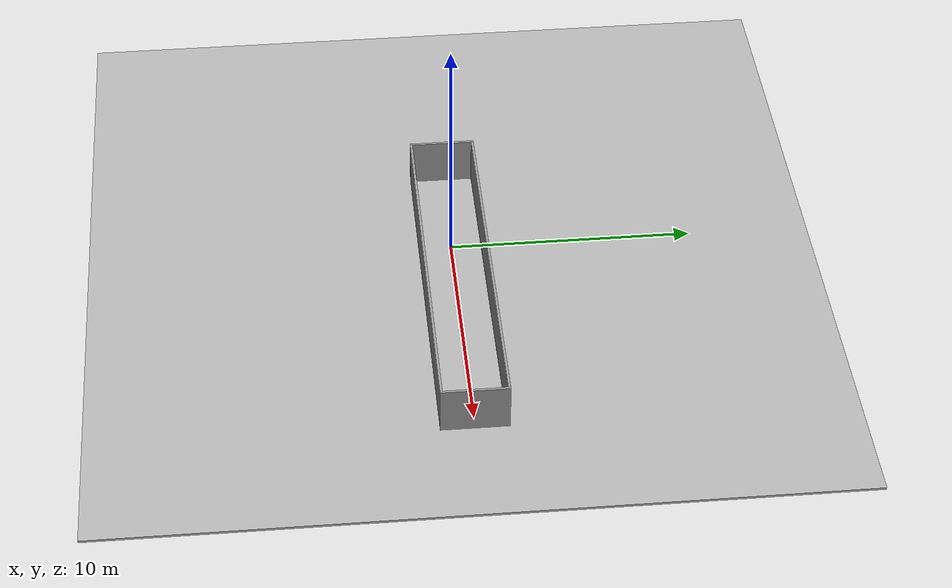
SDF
<sdf version="1.7">
 <world name="corridor_two_human">
  <physics type="ode"><max_step_size>0.003</max_step_size><real_time_factor>1.0</real_time_factor></physics>
  <plugin name="gz::sim::systems::Physics" filename="gz-sim-physics-system"/>
  <plugin name="gz::sim::systems::UserCommands" filename="gz-sim-user-commands-system"/>
  <plugin name="gz::sim::systems::SceneBroadcaster" filename="gz-sim-scene-broadcaster-system"/>
  <plugin name="gz::sim::systems::Contact" filename="gz-sim-contact-system"/>
  <light type="directional" name="sun">
   <cast_shadows>0</cast_shadows>
   <pose>-5 -3 10 0 0 0</pose>
   <diffuse>1 1 1 1</diffuse>
   <specular>1 1 1 1</specular>
   <direction>0 0 -1</direction>
  </light>
  <scene><ambient>0.8 0.8 0.8 1</ambient><background>0.9 0.9 0.9 1</background></scene>
  <model name="ground_plane">
   <static>true</static>
   <link name="link">
    <collision name="collision">
     <pose>0 0 -0.05 0 0 0</pose>
     <geometry><box><size>30 30 0.1</size></box></geometry>
    </collision>
    <visual name="visual">
     <pose>0 0 -0.05 0 0 0</pose>
     <geometry><box><size>30 30 0.1</size></box></geometry>
     <material><ambient>0.7 0.7 0.7 1</ambient><diffuse>0.7 0.7 0.7 1</diffuse></material>
    </visual>
   </link>
  </model>
  <model name="wall_north">
   <static>true</static>
   <pose>3.0 1.30 1.0 0 0 0</pose>
   <link name="link">
    <collision name="collision"><geometry><box><size>15.0 0.1 2.0</size></box></geometry></collision>
    <visual name="visual">
     <geometry><box><size>15.0 0.1 2.0</size></box></geometry>
     <material><ambient>0.6 0.6 0.6 1</ambient><diffuse>0.6 0.6 0.6 1</diffuse></material>
    </visual>
   </link>
  </model>
  <model name="wall_south">
   <static>true</static>
   <pose>3.0 -1.30 1.0 0 0 0</pose>
   <link name="link">
    <collision name="collision"><geometry><box><size>15.0 0.1 2.0</size></box></geometry></collision>
    <visual name="visual">
     <geometry><box><size>15.0 0.1 2.0</size></box></geometry>
     <material><ambient>0.6 0.6 0.6 1</ambient><diffuse>0.6 0.6 0.6 1</diffuse></material>
    </visual>
   </link>
  </model>
  <model name="wall_west">
   <static>true</static>
   <pose>-4.5 0 1.0 0 0 1.5708</pose>
   <link name="link">
    <collision name="collision"><geometry><box><size>2.7 0.1 2.0</size></box></geometry></collision>
    <visual name="visual">
     <geometry><box><size>2.7 0.1 2.0</size></box></geometry>
     <material><ambient>0.6 0.6 0.6 1</ambient><diffuse>0.6 0.6 0.6 1</diffuse></material>
    </visual>
   </link>
  </model>
  <model name="wall_east">
   <static>true</static>
   <pose>10.5 0 1.0 0 0 1.5708</pose>
   <link name="link">
    <collision name="collision"><geometry><box><size>2.7 0.1 2.0</size></box></geometry></collision>
    <visual name="visual">
     <geometry><box><size>2.7 0.1 2.0</size></box></geometry>
     <material><ambient>0.6 0.6 0.6 1</ambient><diffuse>0.6 0.6 0.6 1</diffuse></material>
    </visual>
   </link>
  </model>
 </world>
</sdf>
